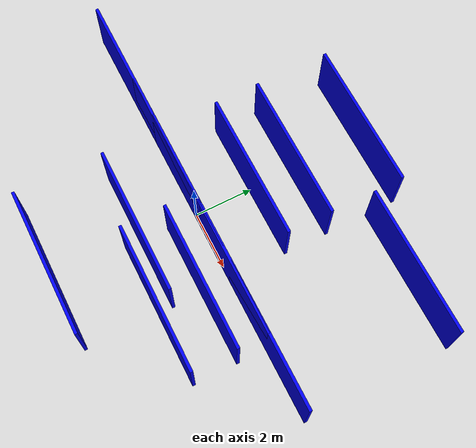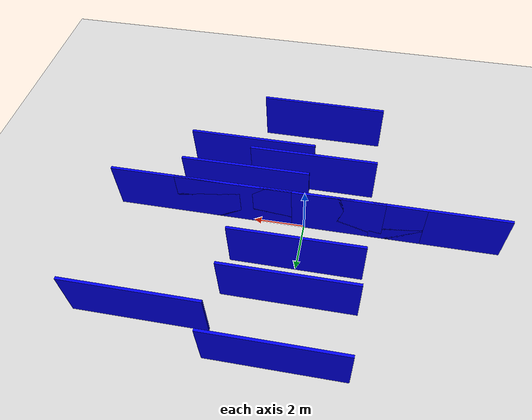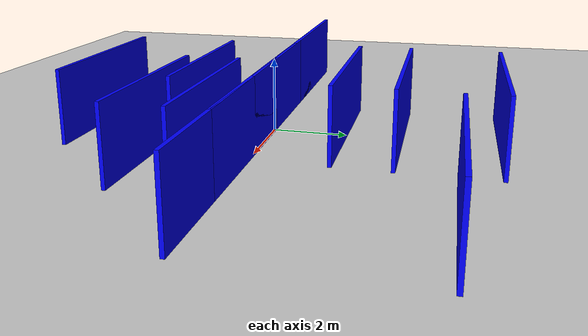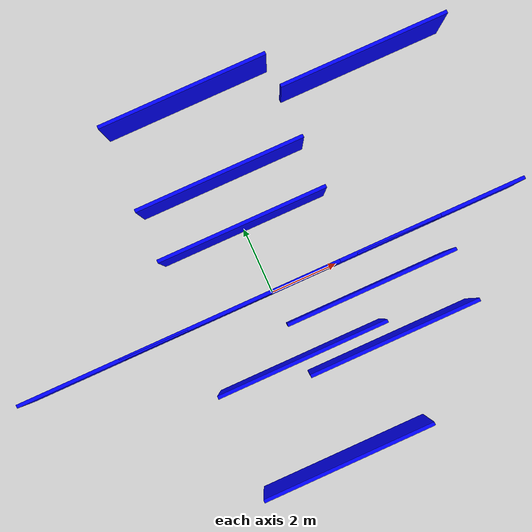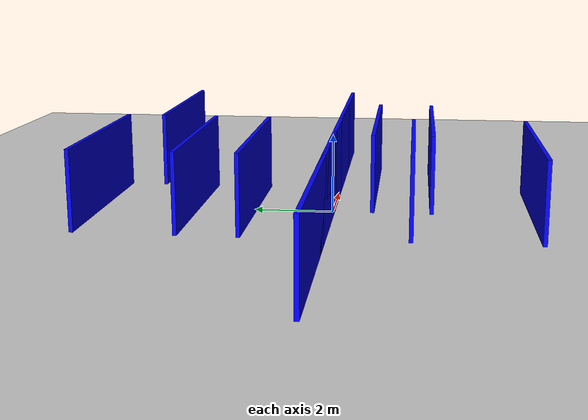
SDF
<sdf version="1.6">
 <property><name>pi</name><value>3.14159265359</value></property>
 <world name="my_world">
  <physics name="1ms" type="ignored">
   <max_step_size>0.001</max_step_size>
   <real_time_factor>1.0</real_time_factor>
  </physics>
  <plugin filename="gz-sim-physics-system" name="gz::sim::systems::Physics"/>
  <plugin filename="gz-sim-user-commands-system" name="gz::sim::systems::UserCommands"/>
  <plugin filename="gz-sim-scene-broadcaster-system" name="gz::sim::systems::SceneBroadcaster"/>
  <physics type="ode">
   <max_step_size>0.001</max_step_size>
   <real_time_update_rate>1000</real_time_update_rate>
   <real_time_factor>1.0</real_time_factor>
  </physics>
  <light type="directional" name="sun">
   <pose>0 0 10 0 0 0</pose>
   <diffuse>0.8 0.8 0.8 1</diffuse>
   <specular>0.2 0.2 0.2 1</specular>
   <attenuation>
    <range>1000</range>
    <constant>0.9</constant>
    <linear>0.01</linear>
    <quadratic>0.001</quadratic>
   </attenuation>
   <direction>-0.5 0.1 -0.9</direction>
  </light>
  <model name="ground_plane">
   <static>true</static>
   <link name="link">
    <collision name="collision">
     <geometry><plane><normal>0 0 1</normal><size>50 50</size></plane></geometry>
    </collision>
    <visual name="visual">
     <geometry><plane><normal>0 0 1</normal><size>50 50</size></plane></geometry>
     <material><ambient>0.8 0.8 0.8 1</ambient><diffuse>0.8 0.8 0.8 1</diffuse></material>
    </visual>
   </link>
  </model>
  <include><uri>model://room_wall_2x5m</uri><pose>2.5 -1 0 0 0 0</pose><name>a1</name></include>
  <include><uri>model://room_wall_2x5m</uri><pose relative_to="a1">0 -5 0 0 0 0</pose><name>a5</name></include>
  <include><uri>model://room_wall_2x5m</uri><pose relative_to="a5">2.5 0 0 0 0 0</pose><name>a6</name></include>
  <include><uri>model://room_wall_2x5m</uri><pose relative_to="a6">0 -2 0 0 0 0</pose><name>a7</name></include>
  <include><uri>model://room_wall_2x5m</uri><pose relative_to="a7">-5 0 0 0 0 0</pose><name>a8</name></include>
  <include><uri>model://room_wall_2x5m</uri><pose relative_to="a1">0 6 0 0 0 0</pose><name>b1</name></include>
  <include><name>c0</name><pose relative_to="b1">5 5 0 0 0 0</pose><uri>model://room_wall_2x5m</uri></include>
  <include><name>c1</name><pose relative_to="c0">-5 0 0 0 0 0</pose><uri>model://room_wall_2x5m</uri></include>
  <include><name>c2</name><pose relative_to="c1">-5 0 0 0 0 0</pose><uri>model://room_wall_2x5m</uri></include>
  <include><name>c3</name><pose relative_to="c2">-5 0 0 0 0 0</pose><uri>model://room_wall_2x5m</uri></include>
  <include>
   <name>c8</name>
   <pose relative_to="c7">2.5 -2.5 0 0 0 0</pose>
   <uri>model://room_wall_2x5m</uri>
  </include>
  <include><name>c9</name><pose relative_to="c8">5 0 0 0 0 0</pose><uri>model://room_wall_2x5m</uri></include>
  <include><name>c10</name><pose relative_to="c9">5 0 0 0 0 0</pose><uri>model://room_wall_2x5m</uri></include>
  <include><name>c11</name><pose relative_to="c10">5 0 0 0 0 0</pose><uri>model://room_wall_2x5m</uri></include>
  <include><name>d1</name><pose relative_to="b1">-5 0 0 0 0 0</pose><uri>model://room_wall_2x5m</uri></include>
  <include><name>d2</name><pose relative_to="c8">0 2 0 0 0 0</pose><uri>model://room_wall_2x5m</uri></include>
  <include><name>d3</name><pose relative_to="d2">0 3.5 0 0 0 0</pose><uri>model://room_wall_2x5m</uri></include>
  <include><name>d4</name><pose relative_to="d3">0 3.5 0 0 0 0</pose><uri>model://room_wall_2x5m</uri></include>
  <include>
   <name>d6</name>
   <pose relative_to="a8">-0.5 0 0 0 0 0</pose>
   <uri>model://room_wall_2x5m</uri>
  </include>
  <include>
   <name>d9</name>
   <pose relative_to="a1">-2 0 0 0 0 0</pose>
   <uri>model://room_wall_2x5m</uri>
   <size>0.1 3.0 2</size>
  </include>
 </world>
</sdf>

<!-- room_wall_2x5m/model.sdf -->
<sdf version='1.8'>
  <model name='room_wall_2x5m'>
    <link name="link">
      <pose>0 0 1 0 0 1.570796326795</pose>
      <visual name="visual">
        <geometry>
          <box>
            <size>0.1 5.0 2</size>
          </box>
        </geometry>
        <material>
          <ambient>0.0 0.0 1.0 1</ambient>
          <diffuse>0.0 0.0 1.0 1</diffuse>
          <specular>0.0 0.0 1.0 1</specular>
        </material>
      </visual>
      <collision name ="collision">
        <geometry>
           <box>
            <size>0.1 5.0 2</size>
          </box>
        </geometry>
      </collision>
    </link>
    <static>1</static>
    <allow_auto_disable>1</allow_auto_disable>
  </model>
</sdf>
